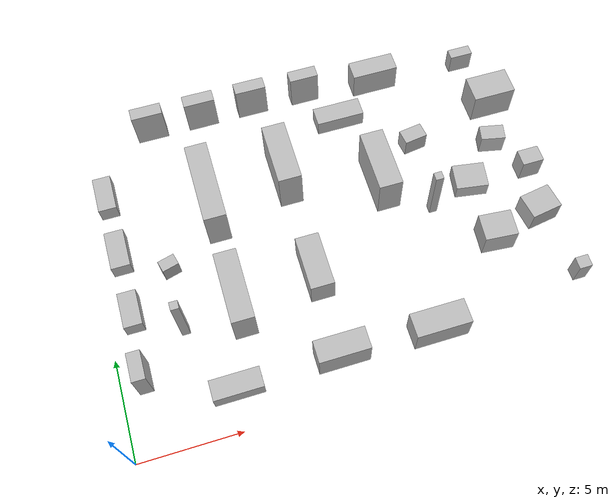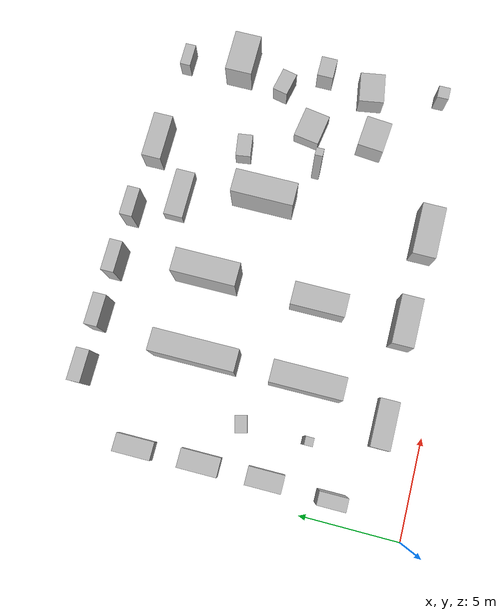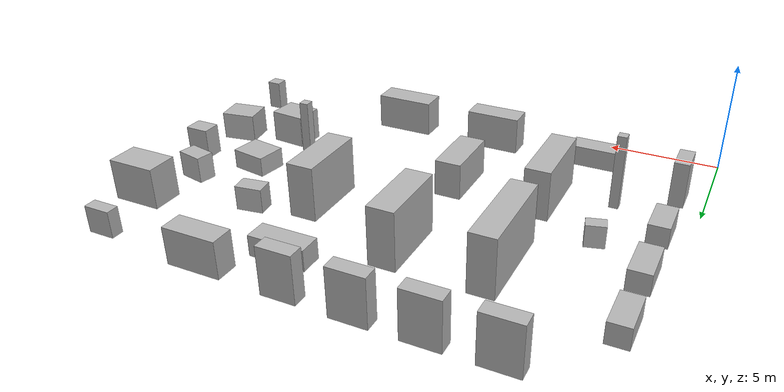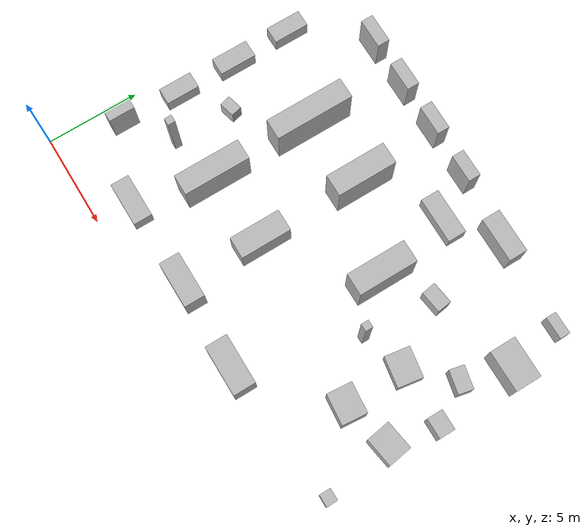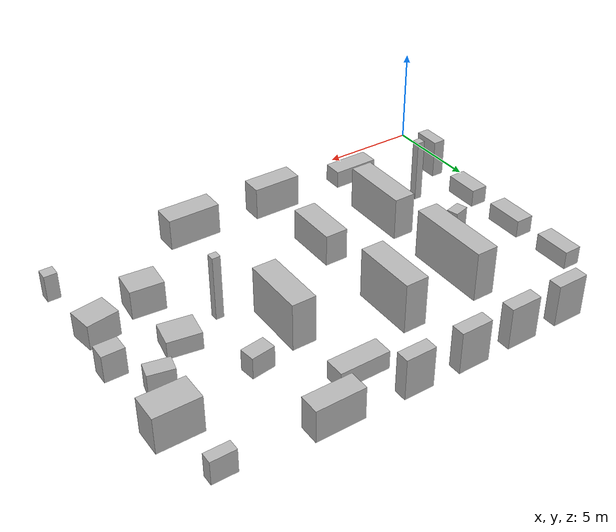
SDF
<?xml version='1.0' encoding='utf-8'?>
<sdf version="1.9">
  <world name="materialbrain_lab">
    <gravity>0 0 -9.81</gravity>
    <model name="A01">
      <static>true</static>
      <pose>1.15 3.75 1.025 0 0 1.5707963267948966</pose>
      <link name="body">
        <collision name="outer_envelope">
          <geometry>
            <box>
              <size>1.4 0.65 2.05</size>
            </box>
          </geometry>
        </collision>
        <visual name="outer_envelope">
          <geometry>
            <box>
              <size>1.4 0.65 2.05</size>
            </box>
          </geometry>
        </visual>
      </link>
    </model>
    <model name="A02">
      <static>true</static>
      <pose>1.25 7 0.465 0 0 1.5707963267948966</pose>
      <link name="body">
        <collision name="outer_envelope">
          <geometry>
            <box>
              <size>1.8 0.9 0.93</size>
            </box>
          </geometry>
        </collision>
        <visual name="outer_envelope">
          <geometry>
            <box>
              <size>1.8 0.9 0.93</size>
            </box>
          </geometry>
        </visual>
      </link>
    </model>
    <model name="A03">
      <static>true</static>
      <pose>1.25 10.25 0.465 0 0 1.5707963267948966</pose>
      <link name="body">
        <collision name="outer_envelope">
          <geometry>
            <box>
              <size>2 0.95 0.93</size>
            </box>
          </geometry>
        </collision>
        <visual name="outer_envelope">
          <geometry>
            <box>
              <size>2 0.95 0.93</size>
            </box>
          </geometry>
        </visual>
      </link>
    </model>
    <model name="A04">
      <static>true</static>
      <pose>1.2 13.5 0.465 0 0 1.5707963267948966</pose>
      <link name="body">
        <collision name="outer_envelope">
          <geometry>
            <box>
              <size>1.9 0.9 0.93</size>
            </box>
          </geometry>
        </collision>
        <visual name="outer_envelope">
          <geometry>
            <box>
              <size>1.9 0.9 0.93</size>
            </box>
          </geometry>
        </visual>
      </link>
    </model>
    <model name="A05">
      <static>true</static>
      <pose>4.25 16.9 1.075 0 0 0.0</pose>
      <link name="body">
        <collision name="outer_envelope">
          <geometry>
            <box>
              <size>1.6 0.66 2.15</size>
            </box>
          </geometry>
        </collision>
        <visual name="outer_envelope">
          <geometry>
            <box>
              <size>1.6 0.66 2.15</size>
            </box>
          </geometry>
        </visual>
      </link>
    </model>
    <model name="A06">
      <static>true</static>
      <pose>7 16.9 1.075 0 0 0.0</pose>
      <link name="body">
        <collision name="outer_envelope">
          <geometry>
            <box>
              <size>1.6 0.66 2.15</size>
            </box>
          </geometry>
        </collision>
        <visual name="outer_envelope">
          <geometry>
            <box>
              <size>1.6 0.66 2.15</size>
            </box>
          </geometry>
        </visual>
      </link>
    </model>
    <model name="A07">
      <static>true</static>
      <pose>9.75 16.9 1.075 0 0 0.0</pose>
      <link name="body">
        <collision name="outer_envelope">
          <geometry>
            <box>
              <size>1.6 0.66 2.15</size>
            </box>
          </geometry>
        </collision>
        <visual name="outer_envelope">
          <geometry>
            <box>
              <size>1.6 0.66 2.15</size>
            </box>
          </geometry>
        </visual>
      </link>
    </model>
    <model name="B01">
      <static>true</static>
      <pose>6.25 11.75 1.3 0 0 1.5707963267948966</pose>
      <link name="body">
        <collision name="outer_envelope">
          <geometry>
            <box>
              <size>4.25 1.12 2.6</size>
            </box>
          </geometry>
        </collision>
        <visual name="outer_envelope">
          <geometry>
            <box>
              <size>4.25 1.12 2.6</size>
            </box>
          </geometry>
        </visual>
      </link>
    </model>
    <model name="B02">
      <static>true</static>
      <pose>10.25 12.25 1.3 0 0 -1.5707963267948966</pose>
      <link name="body">
        <collision name="outer_envelope">
          <geometry>
            <box>
              <size>3.25 1.18 2.6</size>
            </box>
          </geometry>
        </collision>
        <visual name="outer_envelope">
          <geometry>
            <box>
              <size>3.25 1.18 2.6</size>
            </box>
          </geometry>
        </visual>
      </link>
    </model>
    <model name="B03">
      <static>true</static>
      <pose>6.25 6.15 1.125 0 0 1.5707963267948966</pose>
      <link name="body">
        <collision name="outer_envelope">
          <geometry>
            <box>
              <size>3.6 1.12 2.25</size>
            </box>
          </geometry>
        </collision>
        <visual name="outer_envelope">
          <geometry>
            <box>
              <size>3.6 1.12 2.25</size>
            </box>
          </geometry>
        </visual>
      </link>
    </model>
    <model name="B04">
      <static>true</static>
      <pose>10.25 6.5 0.825 0 0 -1.5707963267948966</pose>
      <link name="body">
        <collision name="outer_envelope">
          <geometry>
            <box>
              <size>2.75 1.18 1.65</size>
            </box>
          </geometry>
        </collision>
        <visual name="outer_envelope">
          <geometry>
            <box>
              <size>2.75 1.18 1.65</size>
            </box>
          </geometry>
        </visual>
      </link>
    </model>
    <model name="B05">
      <static>true</static>
      <pose>14 14.8 0.465 0 0 0.0</pose>
      <link name="body">
        <collision name="outer_envelope">
          <geometry>
            <box>
              <size>2.5 1.0 0.93</size>
            </box>
          </geometry>
        </collision>
        <visual name="outer_envelope">
          <geometry>
            <box>
              <size>2.5 1.0 0.93</size>
            </box>
          </geometry>
        </visual>
      </link>
    </model>
    <model name="B06">
      <static>true</static>
      <pose>14.9 10.5 1.225 0 0 1.5707963267948966</pose>
      <link name="body">
        <collision name="outer_envelope">
          <geometry>
            <box>
              <size>3.2 1.2 2.45</size>
            </box>
          </geometry>
        </collision>
        <visual name="outer_envelope">
          <geometry>
            <box>
              <size>3.2 1.2 2.45</size>
            </box>
          </geometry>
        </visual>
      </link>
    </model>
    <model name="B07">
      <static>true</static>
      <pose>12.65 16.85 1.05 0 0 0.0</pose>
      <link name="body">
        <collision name="outer_envelope">
          <geometry>
            <box>
              <size>1.5 0.65 2.1</size>
            </box>
          </geometry>
        </collision>
        <visual name="outer_envelope">
          <geometry>
            <box>
              <size>1.5 0.65 2.1</size>
            </box>
          </geometry>
        </visual>
      </link>
    </model>
    <model name="C01">
      <static>true</static>
      <pose>19.4 5.75 0.75 0 0 -0.08726646259971647</pose>
      <link name="body">
        <collision name="outer_envelope">
          <geometry>
            <box>
              <size>1.65 1.35 1.5</size>
            </box>
          </geometry>
        </collision>
        <visual name="outer_envelope">
          <geometry>
            <box>
              <size>1.65 1.35 1.5</size>
            </box>
          </geometry>
        </visual>
      </link>
    </model>
    <model name="C02">
      <static>true</static>
      <pose>22 6.45 0.65 0 0 0.15707963267948966</pose>
      <link name="body">
        <collision name="outer_envelope">
          <geometry>
            <box>
              <size>1.6 1.3 1.3</size>
            </box>
          </geometry>
        </collision>
        <visual name="outer_envelope">
          <geometry>
            <box>
              <size>1.6 1.3 1.3</size>
            </box>
          </geometry>
        </visual>
      </link>
    </model>
    <model name="C03">
      <static>true</static>
      <pose>19.3 9.05 0.45 0 0 -0.15707963267948966</pose>
      <link name="body">
        <collision name="outer_envelope">
          <geometry>
            <box>
              <size>1.65 1.35 0.9</size>
            </box>
          </geometry>
        </collision>
        <visual name="outer_envelope">
          <geometry>
            <box>
              <size>1.65 1.35 0.9</size>
            </box>
          </geometry>
        </visual>
      </link>
    </model>
    <model name="C04">
      <static>true</static>
      <pose>17.3 12.2 0.55 0 0 0.13962634015954636</pose>
      <link name="body">
        <collision name="outer_envelope">
          <geometry>
            <box>
              <size>1.2 0.78 1.1</size>
            </box>
          </geometry>
        </collision>
        <visual name="outer_envelope">
          <geometry>
            <box>
              <size>1.2 0.78 1.1</size>
            </box>
          </geometry>
        </visual>
      </link>
    </model>
    <model name="C05">
      <static>true</static>
      <pose>21.25 11.0 0.6 0 0 -0.20943951023931956</pose>
      <link name="body">
        <collision name="outer_envelope">
          <geometry>
            <box>
              <size>1.25 0.8 1.2</size>
            </box>
          </geometry>
        </collision>
        <visual name="outer_envelope">
          <geometry>
            <box>
              <size>1.25 0.8 1.2</size>
            </box>
          </geometry>
        </visual>
      </link>
    </model>
    <model name="C06">
      <static>true</static>
      <pose>22.5 9 0.7 0 0 0.0</pose>
      <link name="body">
        <collision name="outer_envelope">
          <geometry>
            <box>
              <size>1.1 0.85 1.4</size>
            </box>
          </geometry>
        </collision>
        <visual name="outer_envelope">
          <geometry>
            <box>
              <size>1.1 0.85 1.4</size>
            </box>
          </geometry>
        </visual>
      </link>
    </model>
    <model name="D01">
      <static>true</static>
      <pose>15 2.0 0.825 0 0 0.0</pose>
      <link name="body">
        <collision name="outer_envelope">
          <geometry>
            <box>
              <size>2.7 1.2 1.65</size>
            </box>
          </geometry>
        </collision>
        <visual name="outer_envelope">
          <geometry>
            <box>
              <size>2.7 1.2 1.65</size>
            </box>
          </geometry>
        </visual>
      </link>
    </model>
    <model name="D02">
      <static>true</static>
      <pose>10.25 2.1 0.86 0 0 0.0</pose>
      <link name="body">
        <collision name="outer_envelope">
          <geometry>
            <box>
              <size>2.5 1.1 1.72</size>
            </box>
          </geometry>
        </collision>
        <visual name="outer_envelope">
          <geometry>
            <box>
              <size>2.5 1.1 1.72</size>
            </box>
          </geometry>
        </visual>
      </link>
    </model>
    <model name="D03">
      <static>true</static>
      <pose>5.2 2.0 0.465 0 0 0.0</pose>
      <link name="body">
        <collision name="outer_envelope">
          <geometry>
            <box>
              <size>2.4 1.0 0.93</size>
            </box>
          </geometry>
        </collision>
        <visual name="outer_envelope">
          <geometry>
            <box>
              <size>2.4 1.0 0.93</size>
            </box>
          </geometry>
        </visual>
      </link>
    </model>
    <model name="D04">
      <static>true</static>
      <pose>22 13.45 0.925 0 0 0.0</pose>
      <link name="body">
        <collision name="outer_envelope">
          <geometry>
            <box>
              <size>2.2 1.4 1.85</size>
            </box>
          </geometry>
        </collision>
        <visual name="outer_envelope">
          <geometry>
            <box>
              <size>2.2 1.4 1.85</size>
            </box>
          </geometry>
        </visual>
      </link>
    </model>
    <model name="D05">
      <static>true</static>
      <pose>21.5 16.4 0.6 0 0 0.0</pose>
      <link name="body">
        <collision name="outer_envelope">
          <geometry>
            <box>
              <size>1.2 0.55 1.2</size>
            </box>
          </geometry>
        </collision>
        <visual name="outer_envelope">
          <geometry>
            <box>
              <size>1.2 0.55 1.2</size>
            </box>
          </geometry>
        </visual>
      </link>
    </model>
    <model name="D06">
      <static>true</static>
      <pose>3.5 8.75 0.5 0 0 0.2617993877991494</pose>
      <link name="body">
        <collision name="outer_envelope">
          <geometry>
            <box>
              <size>0.85 0.6 1.0</size>
            </box>
          </geometry>
        </collision>
        <visual name="outer_envelope">
          <geometry>
            <box>
              <size>0.85 0.6 1.0</size>
            </box>
          </geometry>
        </visual>
      </link>
    </model>
    <model name="D07">
      <static>true</static>
      <pose>16.5 16.6 0.825 0 0 0.0</pose>
      <link name="body">
        <collision name="outer_envelope">
          <geometry>
            <box>
              <size>2.4 1.0 1.65</size>
            </box>
          </geometry>
        </collision>
        <visual name="outer_envelope">
          <geometry>
            <box>
              <size>2.4 1.0 1.65</size>
            </box>
          </geometry>
        </visual>
      </link>
    </model>
    <model name="D08">
      <static>true</static>
      <pose>3.5 5.5 1.675 0 0 0.0</pose>
      <link name="body">
        <collision name="outer_envelope">
          <geometry>
            <box>
              <size>0.4 0.4 3.35</size>
            </box>
          </geometry>
        </collision>
        <visual name="outer_envelope">
          <geometry>
            <box>
              <size>0.4 0.4 3.35</size>
            </box>
          </geometry>
        </visual>
      </link>
    </model>
    <model name="D09">
      <static>true</static>
      <pose>17 8.25 1.675 0 0 0.0</pose>
      <link name="body">
        <collision name="outer_envelope">
          <geometry>
            <box>
              <size>0.4 0.4 3.35</size>
            </box>
          </geometry>
        </collision>
        <visual name="outer_envelope">
          <geometry>
            <box>
              <size>0.4 0.4 3.35</size>
            </box>
          </geometry>
        </visual>
      </link>
    </model>
    <model name="D10">
      <static>true</static>
      <pose>22.6 2.75 0.7 0 0 0.0</pose>
      <link name="body">
        <collision name="outer_envelope">
          <geometry>
            <box>
              <size>0.65 0.6 1.4</size>
            </box>
          </geometry>
        </collision>
        <visual name="outer_envelope">
          <geometry>
            <box>
              <size>0.65 0.6 1.4</size>
            </box>
          </geometry>
        </visual>
      </link>
    </model>
  </world>
</sdf>
